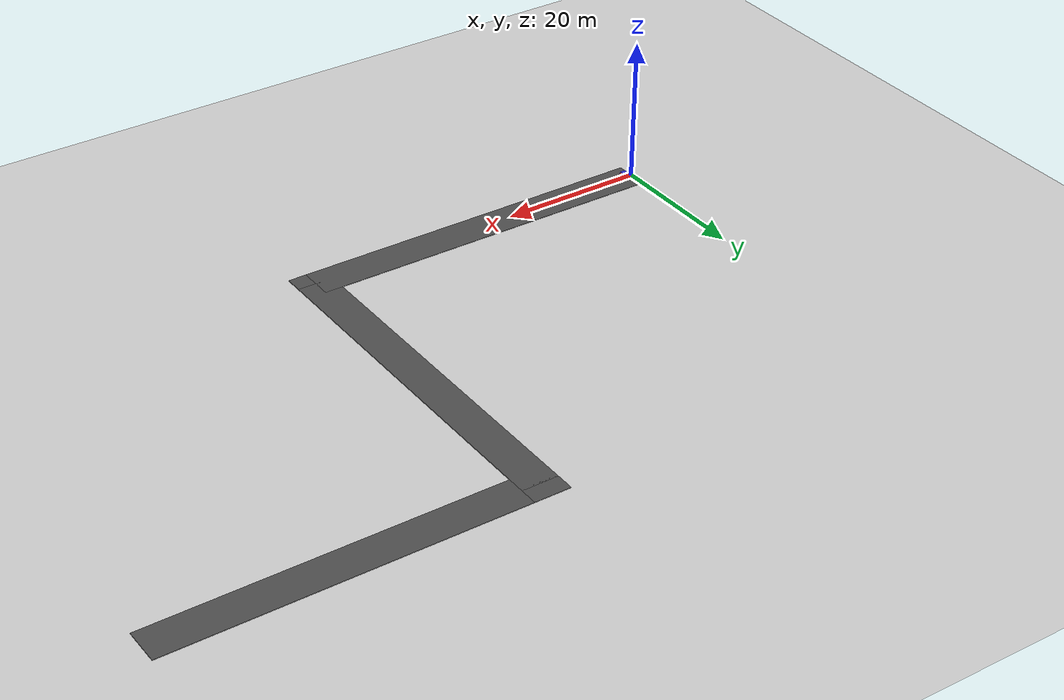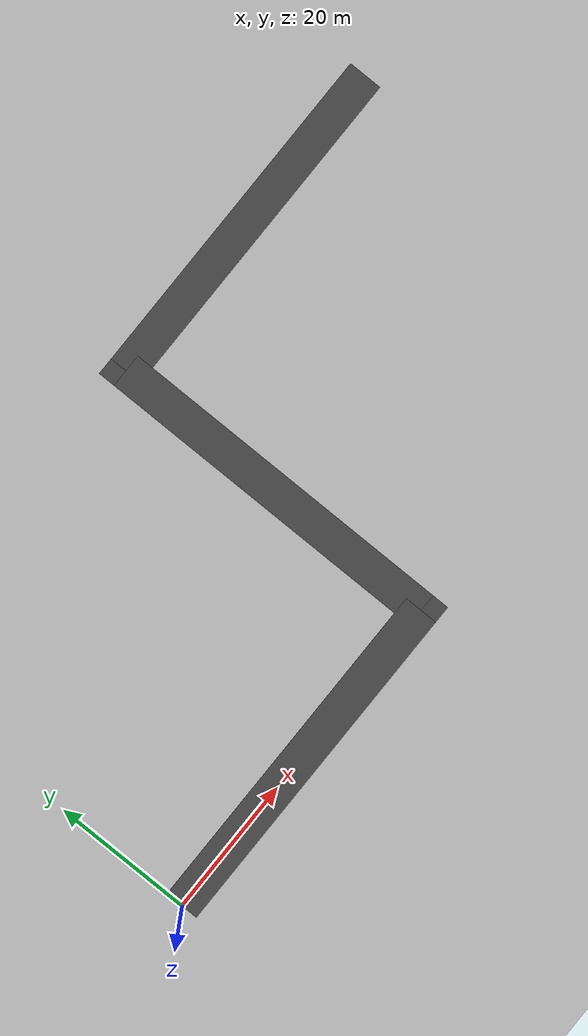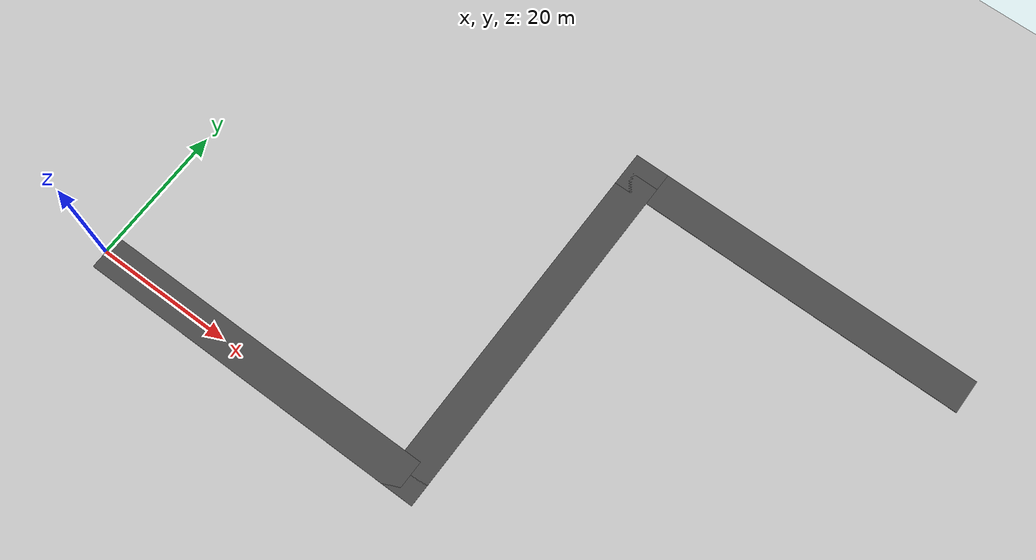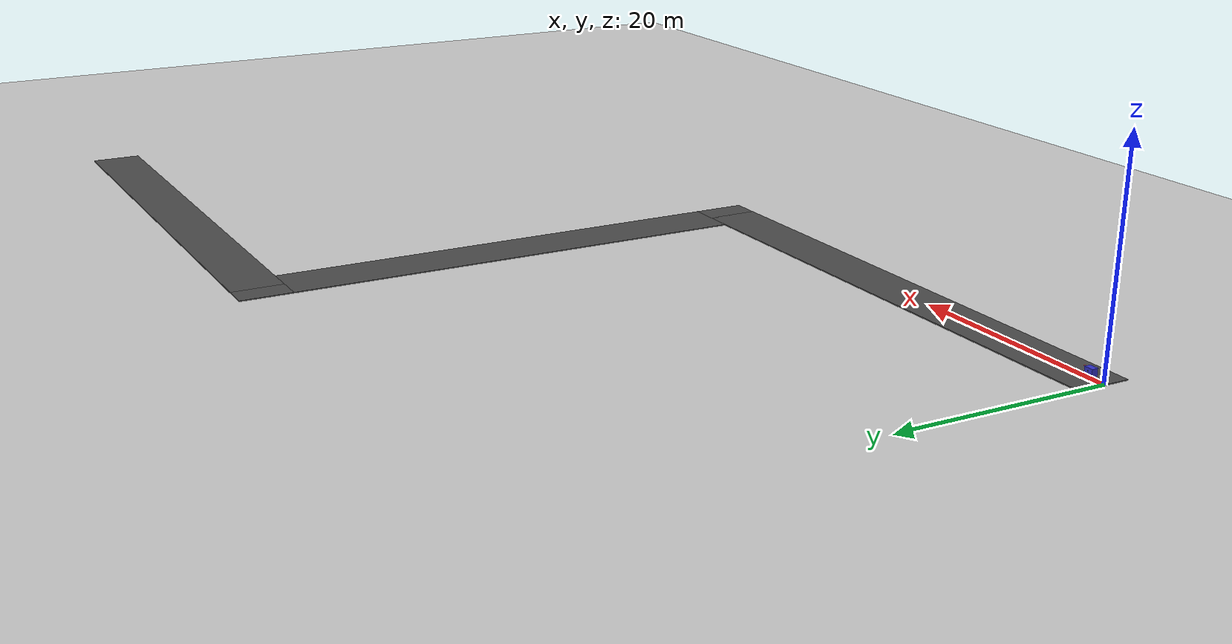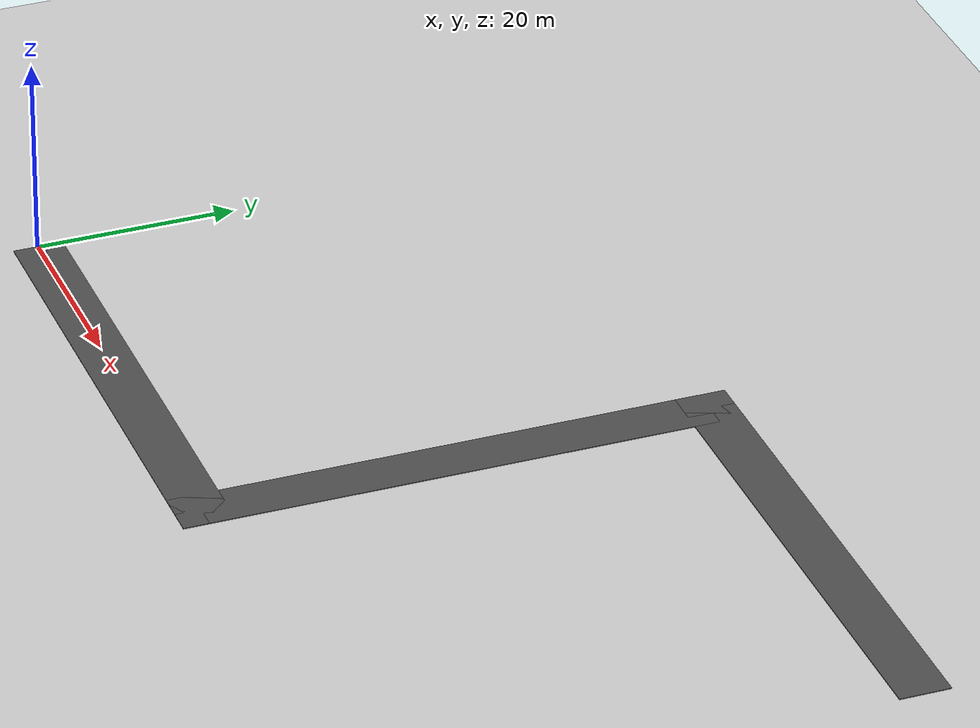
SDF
<?xml version="1.0" ?>
<sdf version="1.6">
  <world name="road_course_world">
    <!-- Gravity -->
    <gravity>0 0 -9.81</gravity>

    <!-- Light -->
    <include>
      <uri>model://sun</uri>
    </include>

    <!-- Ground plane -->
    <include>
      <uri>model://ground_plane</uri>
    </include>

    <!-- Straight road 1: along +x direction -->
    <model name="road_segment_1">
      <static>true</static>
      <pose>25 0 0 0 0 0</pose>
      <link name="link">
        <collision name="collision">
          <geometry>
            <box>
              <size>50 5 0.1</size>
            </box>
          </geometry>
        </collision>
        <visual name="visual">
          <geometry>
            <box>
              <size>50 5 0.1</size>
            </box>
          </geometry>
          <material>
            <ambient>0.3 0.3 0.3 1</ambient>
            <diffuse>0.3 0.3 0.3 1</diffuse>
          </material>
        </visual>
      </link>
    </model>

    <!-- Left turn road: along +y direction -->
    <model name="road_segment_2">
      <static>true</static>
      <!-- Centered near (50,25) and rotated 90deg -->
      <pose>50 25 0 0 0 1.5708</pose>
      <link name="link">
        <collision name="collision">
          <geometry>
            <box>
              <size>50 5 0.1</size>
            </box>
          </geometry>
        </collision>
        <visual name="visual">
          <geometry>
            <box>
              <size>50 5 0.1</size>
            </box>
          </geometry>
          <material>
            <ambient>0.3 0.3 0.3 1</ambient>
            <diffuse>0.3 0.3 0.3 1</diffuse>
          </material>
        </visual>
      </link>
    </model>

    <!-- Intersection pad at (50,0) to fill the inside corner -->
    <model name="intersection_pad_corner_bottom">
      <static>true</static>
      <pose>50 0 0 0 0 0</pose>
      <link name="link">
        <collision name="collision">
          <geometry>
            <box>
              <size>5 5 0.1</size>
            </box>
          </geometry>
        </collision>
        <visual name="visual">
          <geometry>
            <box>
              <size>5 5 0.1</size>
            </box>
          </geometry>
          <material>
            <ambient>0.3 0.3 0.3 1</ambient>
            <diffuse>0.3 0.3 0.3 1</diffuse>
          </material>
        </visual>
      </link>
    </model>

    <!-- Right turn road: along +x again -->
    <model name="road_segment_3">
      <static>true</static>
      <pose>75 50 0 0 0 0</pose>
      <link name="link">
        <collision name="collision">
          <geometry>
            <box>
              <size>50 5 0.1</size>
            </box>
          </geometry>
        </collision>
        <visual name="visual">
          <geometry>
            <box>
              <size>50 5 0.1</size>
            </box>
          </geometry>
          <material>
            <ambient>0.3 0.3 0.3 1</ambient>
            <diffuse>0.3 0.3 0.3 1</diffuse>
          </material>
        </visual>
      </link>
    </model>

    <!-- Intersection pad at (50,50) to fill the inside corner -->
    <model name="intersection_pad_corner_top">
      <static>true</static>
      <pose>50 50 0 0 0 0</pose>
      <link name="link">
        <collision name="collision">
          <geometry>
            <box>
              <size>5 5 0.1</size>
            </box>
          </geometry>
        </collision>
        <visual name="visual">
          <geometry>
            <box>
              <size>5 5 0.1</size>
            </box>
          </geometry>
          <material>
            <ambient>0.3 0.3 0.3 1</ambient>
            <diffuse>0.3 0.3 0.3 1</diffuse>
          </material>
        </visual>
      </link>
    </model>

    <!-- Robot spawn -->
    <include>
      <uri>model://simple_robot</uri>
      <name>simple_robot</name>
      <pose>1.4 0 0.5 0 0 0</pose>
    </include>
  </world>
</sdf>

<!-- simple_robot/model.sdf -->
<sdf version="1.6">
  <model name="simple_robot">
    <static>false</static>
    <pose>0 0 0.5 0 0 0</pose>

    <!-- Base link -->
    <link name="base_link">
      <pose>0 0 0 0 0 0</pose>
      <inertial>
        <mass>50.0</mass>
        <inertia>
          <ixx>5.0</ixx>
          <iyy>5.0</iyy>
          <izz>5.0</izz>
          <ixy>0</ixy>
          <ixz>0</ixz>
          <iyz>0</iyz>
        </inertia>
      </inertial>

      <collision name="collision">
        <geometry>
          <box>
            <size>0.8 0.6 1.0</size>
          </box>
        </geometry>
      </collision>

      <visual name="visual">
        <geometry>
          <box>
            <size>0.8 0.6 1.0</size>
          </box>
        </geometry>
        <material>
          <ambient>0.2 0.2 0.8 1</ambient>
          <diffuse>0.2 0.2 0.8 1</diffuse>
        </material>
      </visual>

      <visual name="front_marker_body">
        <pose>0.5 0 0.4 0 1.5708 0</pose>
        <geometry>
          <cylinder>
            <radius>0.05</radius>
            <length>0.4</length>
          </cylinder>
        </geometry>
        <material>
          <ambient>0.8 0.2 0.2 1</ambient>
          <diffuse>0.8 0.2 0.2 1</diffuse>
        </material>
      </visual>
    </link>

    <!-- Left wheel link -->
    <link name="left_wheel_link">
      <pose>0 0.25 0.2 0 1.5708 0</pose>
      <inertial>
        <mass>1.0</mass>
        <inertia>
          <ixx>0.01</ixx>
          <iyy>0.01</iyy>
          <izz>0.005</izz>
          <ixy>0</ixy>
          <ixz>0</ixz>
          <iyz>0</iyz>
        </inertia>
      </inertial>
      <collision name="collision">
        <geometry>
          <cylinder>
            <radius>0.1</radius>
            <length>0.05</length>
          </cylinder>
        </geometry>
      </collision>
      <visual name="visual">
        <geometry>
          <cylinder>
            <radius>0.1</radius>
            <length>0.05</length>
          </cylinder>
        </geometry>
        <material>
          <ambient>0.1 0.1 0.1 1</ambient>
          <diffuse>0.1 0.1 0.1 1</diffuse>
        </material>
      </visual>
    </link>

    <!-- Right wheel link -->
    <link name="right_wheel_link">
      <pose>0 -0.25 0.2 0 1.5708 0</pose>
      <inertial>
        <mass>1.0</mass>
        <inertia>
          <ixx>0.01</ixx>
          <iyy>0.01</iyy>
          <izz>0.005</izz>
          <ixy>0</ixy>
          <ixz>0</ixz>
          <iyz>0</iyz>
        </inertia>
      </inertial>
      <collision name="collision">
        <geometry>
          <cylinder>
            <radius>0.1</radius>
            <length>0.05</length>
          </cylinder>
        </geometry>
      </collision>
      <visual name="visual">
        <geometry>
          <cylinder>
            <radius>0.1</radius>
            <length>0.05</length>
          </cylinder>
        </geometry>
        <material>
          <ambient>0.1 0.1 0.1 1</ambient>
          <diffuse>0.1 0.1 0.1 1</diffuse>
        </material>
      </visual>
    </link>

    <!-- Wheel joints -->
    <joint name="left_wheel_joint" type="revolute">
      <parent>base_link</parent>
      <child>left_wheel_link</child>
      <pose>0 0 0 0 0 0</pose>
      <axis>
        <xyz>0 1 0</xyz>
        <limit>
          <lower>-1e16</lower>
          <upper>1e16</upper>
        </limit>
      </axis>
    </joint>

    <joint name="right_wheel_joint" type="revolute">
      <parent>base_link</parent>
      <child>right_wheel_link</child>
      <pose>0 0 0 0 0 0</pose>
      <axis>
        <xyz>0 1 0</xyz>
        <limit>
          <lower>-1e16</lower>
          <upper>1e16</upper>
        </limit>
      </axis>
    </joint>

    <!-- UTM-30 (2D LiDAR) -->
    <link name="utm30_link">
      <pose>0.15 0 0.4 0 0 0</pose>
      <sensor name="utm30" type="ray">
        <pose>0 0 0 0 0 0</pose>
        <update_rate>40</update_rate>
        <ray>
          <scan>
            <horizontal>
              <samples>1080</samples>
              <resolution>1</resolution>
              <min_angle>-2.35619</min_angle>
              <max_angle>2.35619</max_angle>
            </horizontal>
          </scan>
          <range>
            <min>0.1</min>
            <max>30.0</max>
            <resolution>0.01</resolution>
          </range>
        </ray>
        <plugin name="utm30_plugin" filename="libgazebo_ros_ray_sensor.so">
          <ros>
            <namespace>/</namespace>
            <remapping>~/out:=scan</remapping>
          </ros>
          <output_type>sensor_msgs/LaserScan</output_type>
          <frame_name>utm30_link</frame_name>
        </plugin>
      </sensor>
    </link>

    <!-- Mid-360-like 3D LiDAR -->
    <link name="mid360_link">
      <pose>0 0 1.0 0 0 0</pose>
      <sensor name="mid360" type="ray">
        <pose>0 0 0 0 0 0</pose>
        <update_rate>10</update_rate>
        <ray>
          <scan>
            <horizontal>
              <samples>720</samples>
              <resolution>1</resolution>
              <min_angle>-3.14159</min_angle>
              <max_angle>3.14159</max_angle>
            </horizontal>
            <vertical>
              <samples>32</samples>
              <resolution>1</resolution>
              <min_angle>-0.52</min_angle>
              <max_angle>0.52</max_angle>
            </vertical>
          </scan>
          <range>
            <min>0.3</min>
            <max>50.0</max>
            <resolution>0.02</resolution>
          </range>
        </ray>
        <plugin name="mid360_plugin" filename="libgazebo_ros_ray_sensor.so">
          <ros>
            <namespace>/</namespace>
            <remapping>~/out:=mid360/points</remapping>
          </ros>
          <output_type>sensor_msgs/PointCloud2</output_type>
          <frame_name>mid360_link</frame_name>
        </plugin>
      </sensor>
    </link>

    <!-- Diff drive plugin configured with wheel joints -->
    <plugin name="diff_drive" filename="libgazebo_ros_diff_drive.so">
      <ros>
        <namespace>/</namespace>
        <remapping>cmd_vel:=cmd_vel</remapping>
        <remapping>odom:=odom</remapping>
      </ros>
      <update_rate>50</update_rate>
      <left_joint>left_wheel_joint</left_joint>
      <right_joint>right_wheel_joint</right_joint>
      <wheel_separation>0.5</wheel_separation>
      <wheel_diameter>0.2</wheel_diameter>
      <odom_frame>odom</odom_frame>
      <base_frame>base_link</base_frame>
      <publish_tf>true</publish_tf>
    </plugin>

  </model>
</sdf>
